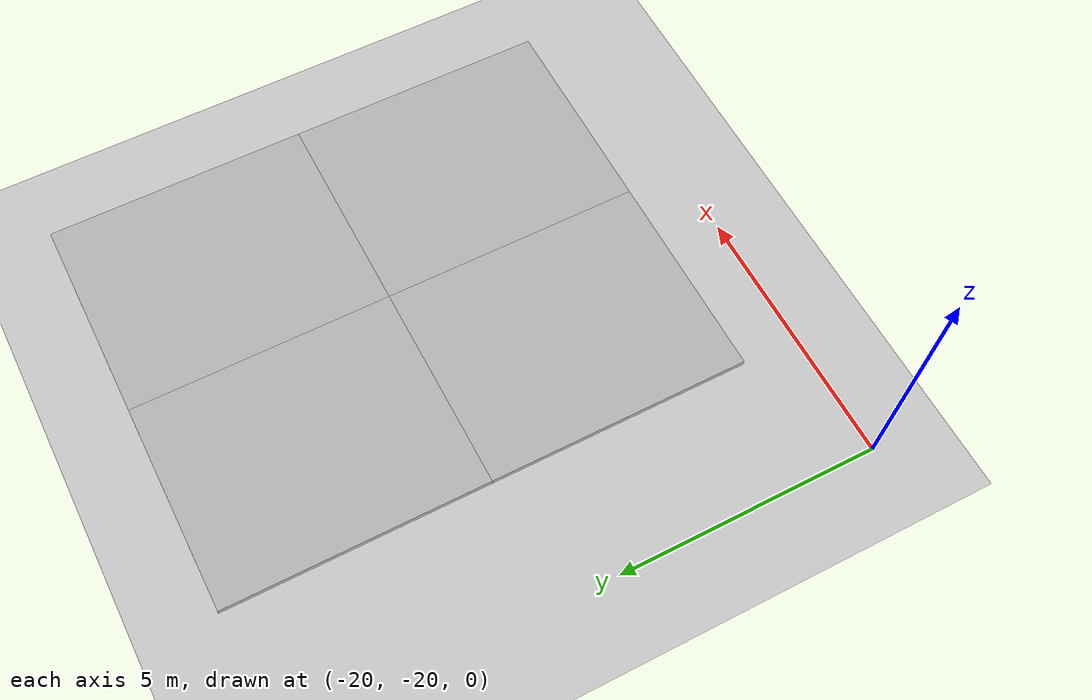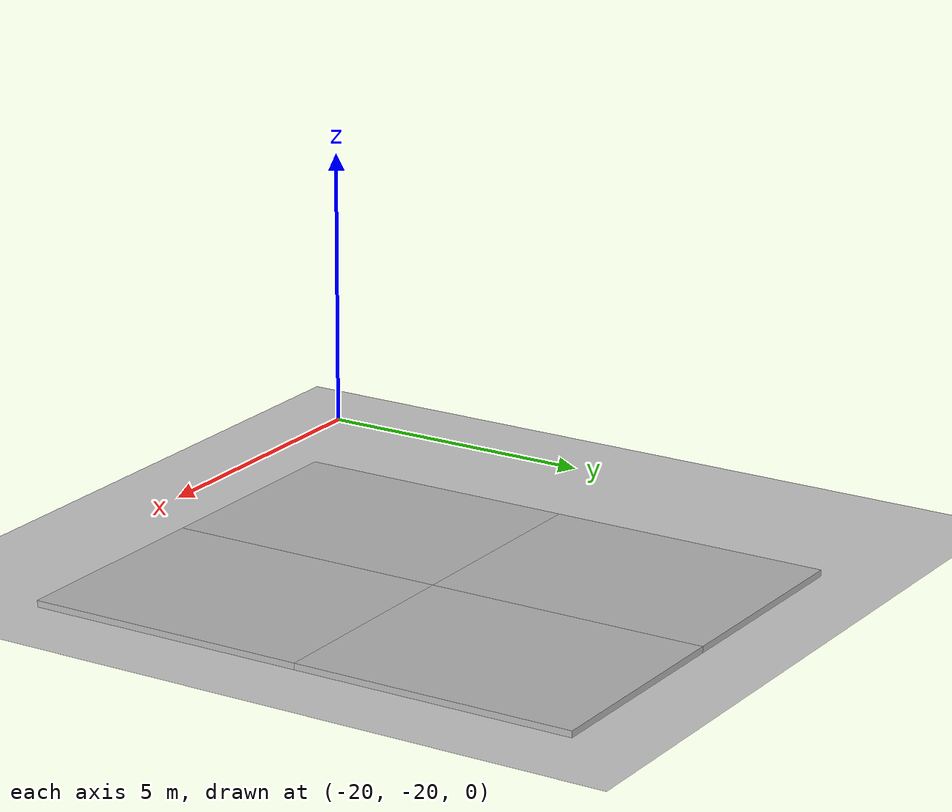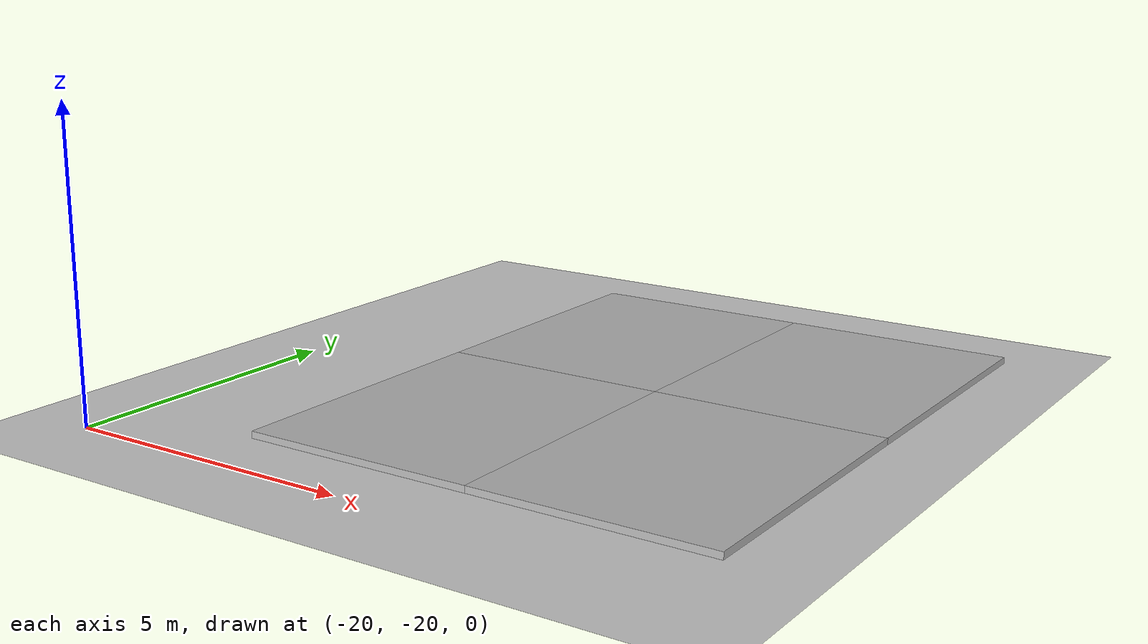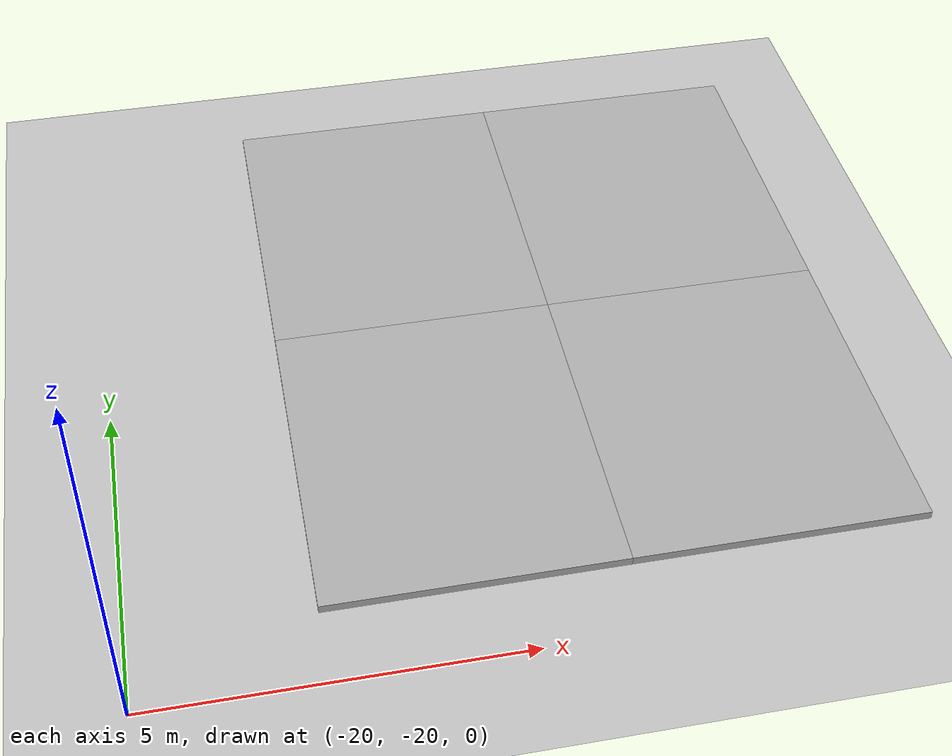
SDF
<sdf version="1.6">
 <world name="default">
  <model name="ground_plane">
   <static>1</static>
   <link name="link">
    <collision name="collision">
     <geometry><plane><normal>0 0 1</normal><size>100 100</size></plane></geometry>
     <surface><friction><ode><mu>100</mu><mu2>50</mu2></ode></friction></surface>
    </collision>
    <visual name="visual">
     <cast_shadows>0</cast_shadows>
     <geometry><plane><normal>0 0 1</normal><size>100 100</size></plane></geometry>
     <material>
      <script><uri>file://media/materials/scripts/gazebo.material</uri><name>Gazebo/Grey</name></script>
     </material>
    </visual>
   </link>
  </model>
  <model name="mud_box">
   <static>1</static>
   <link name="link">
    <collision name="collision"><geometry><box><size>8 10 0.2</size></box></geometry></collision>
    <visual name="visual_1">
     <pose>-2 2.5 0 0 -0 0</pose>
     <cast_shadows>0</cast_shadows>
     <geometry><box><size>4 5 0.2</size></box></geometry>
     <material>
      <script>
       <uri>model://mud_box/materials/scripts</uri>
       <uri>model://mud_box/materials/textures</uri>
       <name>vrc/mud</name>
      </script>
     </material>
    </visual>
    <visual name="visual_2">
     <pose>2 2.5 0 0 -0 0</pose>
     <cast_shadows>0</cast_shadows>
     <geometry><box><size>4 5 0.2</size></box></geometry>
     <material>
      <script>
       <uri>model://mud_box/materials/scripts</uri>
       <uri>model://mud_box/materials/textures</uri>
       <name>vrc/mud</name>
      </script>
     </material>
    </visual>
    <visual name="visual_3">
     <pose>2 -2.5 0 0 -0 0</pose>
     <cast_shadows>0</cast_shadows>
     <geometry><box><size>4 5 0.2</size></box></geometry>
     <material>
      <script>
       <uri>model://mud_box/materials/scripts</uri>
       <uri>model://mud_box/materials/textures</uri>
       <name>vrc/mud</name>
      </script>
     </material>
    </visual>
    <visual name="visual_4">
     <pose>-2 -2.5 0 0 -0 0</pose>
     <cast_shadows>0</cast_shadows>
     <geometry><box><size>4 5 0.2</size></box></geometry>
     <material>
      <script>
       <uri>model://mud_box/materials/scripts</uri>
       <uri>model://mud_box/materials/textures</uri>
       <name>vrc/mud</name>
      </script>
     </material>
    </visual>
   </link>
   <pose>-13.6175 -13.8985 0 0 -0 0</pose>
  </model>
 </world>
</sdf>
